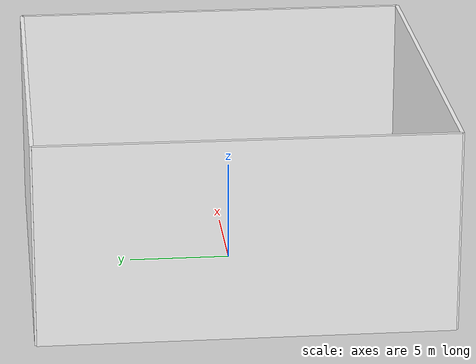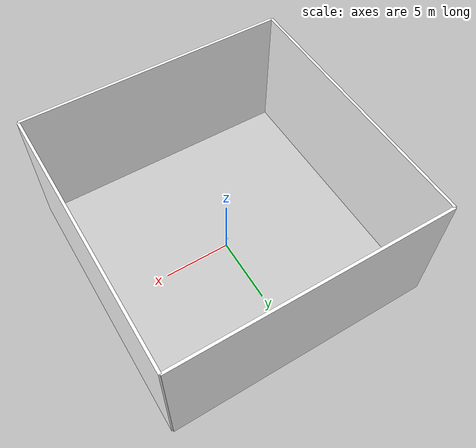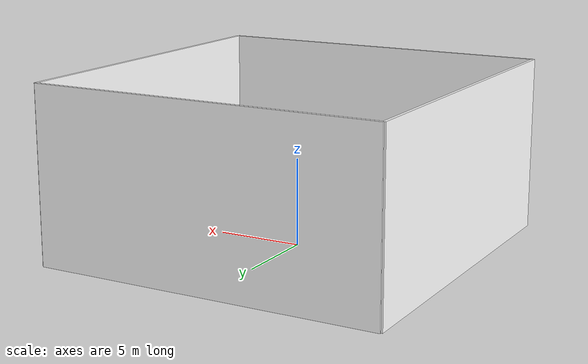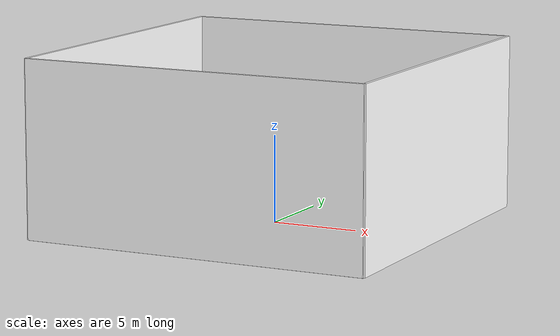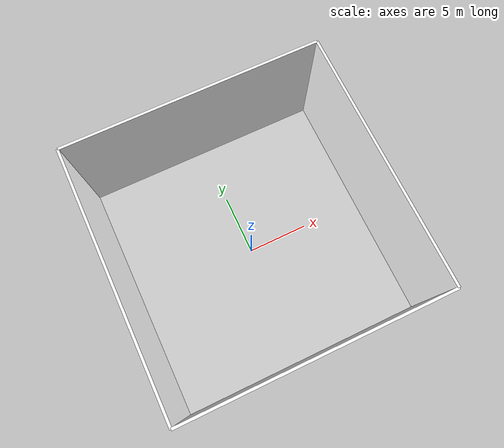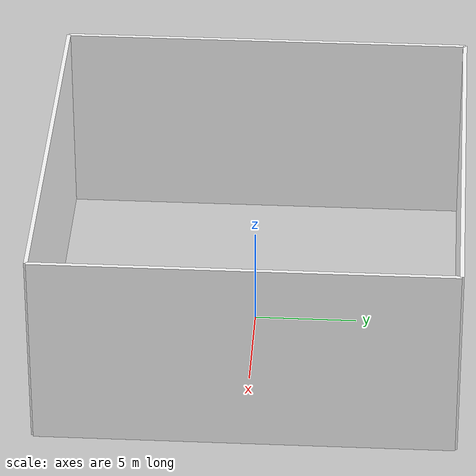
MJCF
<mujoco model="hello">
    <option gravity="0 0 -9.81"/>

    <worldbody>

        <geom
            type="plane"
            size="10 10 .1"
            rgba=".8 .8 .8 1"/>

        <!-- +X wall -->
        <geom
            type="box"
            pos="10 0 5"
            size="0.1 10 5"
            rgba="1 1 1 1"/>

        <!-- -X wall -->
        <geom
            type="box"
            pos="-10 0 5"
            size="0.1 10 5"
            rgba="1 1 1 1"/>

        <!-- +Y wall -->
        <geom
            type="box"
            pos="0 10 5"
            size="10 0.1 5"
            rgba="1 1 1 1"/>

        <!-- -Y wall -->
        <geom
            type="box"
            pos="0 -10 5"
            size="10 0.1 5"
            rgba="1 1 1 1"/>

        <body pos="0 0 1">
            <joint type="free"/>

            <geom
                type="sphere"
                size="0.1"
                mass="1"
                solref="0.005 0.2"
                solimp="0.99 0.999 0.0001"
                rgba="1 0 0 1"/>

        </body>

    </worldbody>
</mujoco>
